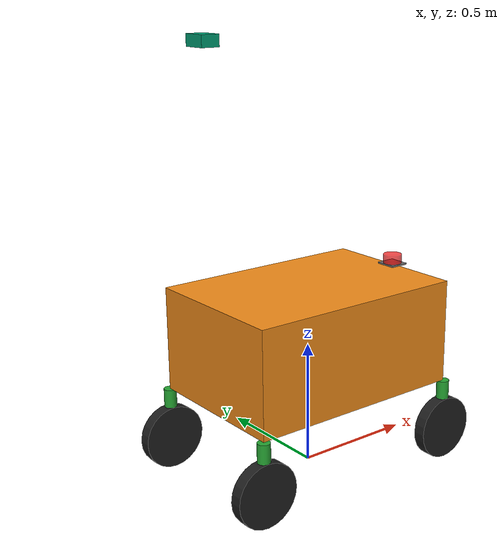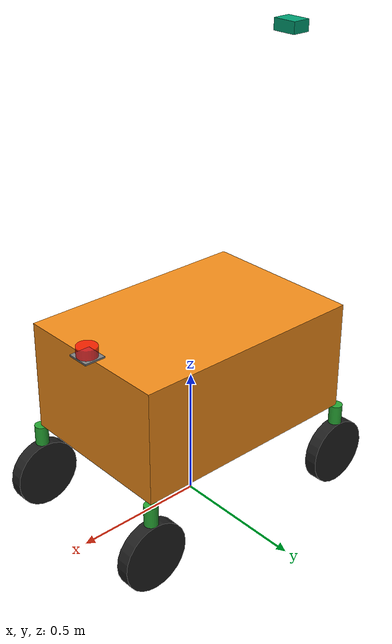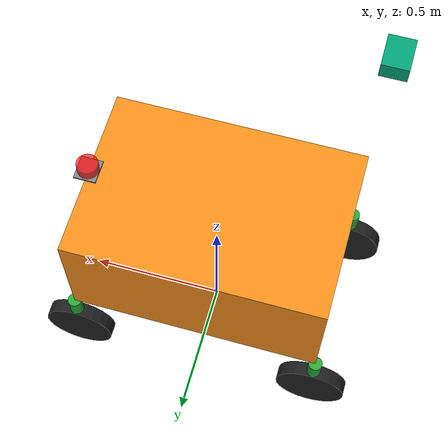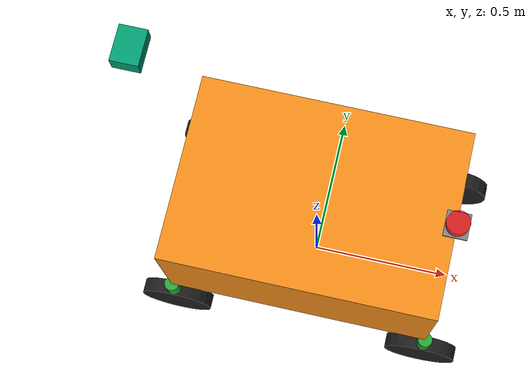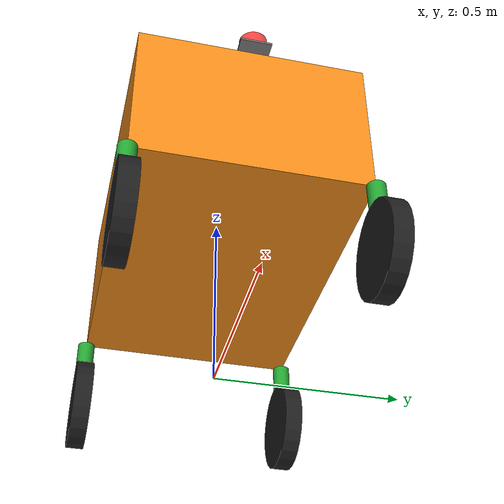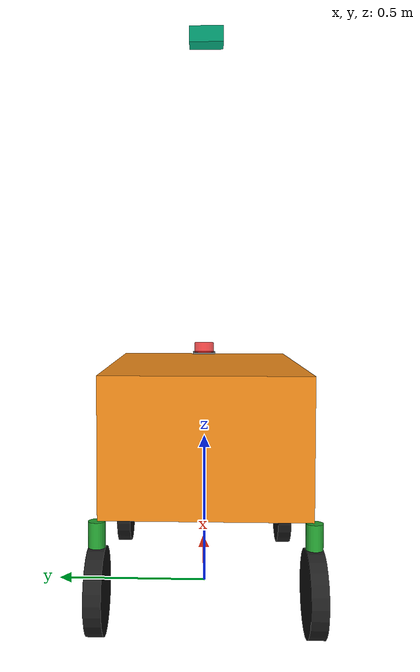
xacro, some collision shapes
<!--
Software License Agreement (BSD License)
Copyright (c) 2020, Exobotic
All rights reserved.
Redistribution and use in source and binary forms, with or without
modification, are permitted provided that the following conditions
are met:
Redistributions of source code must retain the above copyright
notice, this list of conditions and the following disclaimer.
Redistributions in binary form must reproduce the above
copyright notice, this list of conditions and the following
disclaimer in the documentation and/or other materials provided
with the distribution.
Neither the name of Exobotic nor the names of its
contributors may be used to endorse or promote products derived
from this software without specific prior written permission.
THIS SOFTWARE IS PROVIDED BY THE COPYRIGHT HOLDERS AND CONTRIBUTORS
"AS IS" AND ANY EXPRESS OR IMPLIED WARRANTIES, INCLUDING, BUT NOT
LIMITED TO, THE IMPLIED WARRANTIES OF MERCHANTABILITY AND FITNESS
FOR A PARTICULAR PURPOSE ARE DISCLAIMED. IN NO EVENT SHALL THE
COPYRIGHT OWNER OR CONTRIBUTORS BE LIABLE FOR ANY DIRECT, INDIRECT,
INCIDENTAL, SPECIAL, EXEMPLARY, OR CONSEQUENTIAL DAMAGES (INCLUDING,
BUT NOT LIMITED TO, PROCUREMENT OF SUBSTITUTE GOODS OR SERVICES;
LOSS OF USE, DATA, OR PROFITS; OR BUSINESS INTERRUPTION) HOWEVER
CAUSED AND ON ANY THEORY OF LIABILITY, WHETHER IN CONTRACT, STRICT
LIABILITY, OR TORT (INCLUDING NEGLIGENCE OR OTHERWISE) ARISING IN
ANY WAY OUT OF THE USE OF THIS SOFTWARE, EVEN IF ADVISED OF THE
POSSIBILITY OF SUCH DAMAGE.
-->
<?xml version="1.0"?>

<robot name="fieldbot" xmlns:xacro="http://www.ros.org/wiki/xacro">

	<!-- Constants for robot dimensions -->
	<xacro:property name="PI" value="3.1415926535897931"/>
	<xacro:property name="height" value="0.33" /> <!-- height of the body -->

	<xacro:property name="body_m" value="25.0" /> <!-- mass of the body structure -->
	<xacro:property name="body_l" value="0.904" /> <!-- length of the body structure -->
	<xacro:property name="body_w" value="0.622" /> <!-- width of the body structure -->
	<xacro:property name="body_h" value="0.4191" /> <!-- thickness of the body structure -->
	<xacro:property name="leg_m" value="1" /> <!-- mass of a thigh leg -->
	<xacro:property name="leg_r" value="0.025" /> <!-- radius of the leg cylinders -->
	<xacro:property name="wheel_m" value="5" /> <!-- mass of a single wheel -->
	<xacro:property name="wheel_r" value="0.127" /> <!-- radius of the wheels -->
	<xacro:property name="wheel_h" value="0.05" /> <!-- thickness of the wheels -->
	<xacro:property name="wheel_off" value="0.00" /> <!-- thickness of the wheels -->
	<xacro:property name="joint_damping" value="0.1" /> <!-- damping of all joints -->
	<xacro:property name="camera_mount_height" value="0.94" />
	<xacro:property name="camera_tilt_angle_deg" value="15" />
	<xacro:property name="lidar_mount_height" value="0.0" />

	<!-- Import all Gazebo-customization elements, including Gazebo colors -->
	<xacro:include filename="$(find bender_description)/urdf/bender.gazebo" />
	<!-- Import Rviz colors -->
	<xacro:include filename="$(find bender_description)/urdf/materials.xacro" />
	<!-- Import Sensors -->
	<xacro:include filename="$(find bender_description)/urdf/sensors/logitech_c910.xacro" />
	<xacro:include filename="$(find bender_description)/urdf/sensors/rplidar.xacro" />

	<!-- BODY link -->
	<link name="base_link">
		<collision>
			<origin xyz="0 0 0" rpy="0 0 0"/>
			<geometry>
				<box size="${body_l} ${body_w} ${body_h}"/>
			</geometry>
		</collision>
		<visual>
			<origin xyz="0 0 0" rpy="0 0 0"/>
			<geometry>
				<box size="${body_l} ${body_w} ${body_h}"/>
			</geometry>
			<material name="orange"/>
		</visual>
		<inertial>
			<origin xyz="0 0 0" rpy="0 0 0"/>
			<mass value="${body_m}"/>
			<inertia ixx="${body_m / 12.0 * (body_w*body_w + body_h*body_h)}" ixy="0.0" ixz="0.0"
					 iyy="${body_m / 12.0 * (body_l*body_l + body_h*body_h)}" iyz="0.0"
					 izz="${body_m / 12.0 * (body_w*body_w + body_l*body_l)}"/>
		</inertial>
	</link>
	<link name="base_footprint"/>
	<joint name="base_footprint_joint" type="fixed">
		<parent link="base_footprint"/>
		<child link="base_link"/>
		<origin xyz="0 0 ${height + body_h/2}" rpy="0 0 0"/>
	</joint>

	<!-- LEG joints -->
	<joint name="leg_lf_joint" type="continuous">
		<origin xyz="${body_l / 2} ${body_w / 2} ${-body_h/2 - (height - 2*wheel_r - wheel_off)/2}" rpy="0 0 0"/>
		<parent link="base_link" />
		<child link="leg_lf" />
		<dynamics damping="${joint_damping}"/>
		<axis xyz="0 0 1" />
	</joint>
	<joint name="leg_rf_joint" type="continuous">
		<origin xyz="${body_l / 2} ${-body_w / 2} ${-body_h/2 - (height - 2*wheel_r - wheel_off)/2}" rpy="0 0 0"/>
		<parent link="base_link" />
		<child link="leg_rf" />
		<dynamics damping="${joint_damping}"/>
		<axis xyz="0 0 1" />
	</joint>
	<joint name="leg_lh_joint" type="continuous">
		<origin xyz="${-body_l / 2} ${body_w / 2} ${-body_h/2 - (height - 2*wheel_r - wheel_off)/2}" rpy="0 0 0"/>
		<parent link="base_link" />
		<child link="leg_lh" />
		<dynamics damping="${joint_damping}"/>
		<axis xyz="0 0 1" />
	</joint>
	<joint name="leg_rh_joint" type="continuous">
		<origin xyz="${-body_l / 2} ${-body_w / 2} ${-body_h/2 - (height - 2*wheel_r - wheel_off)/2}" rpy="0 0 0"/>
		<parent link="base_link" />
		<child link="leg_rh" />
		<dynamics damping="${joint_damping}"/>
		<axis xyz="0 0 1" />
	</joint>

	<!-- LEG links -->
	<link name="leg_lf">
		<collision>
			<origin xyz="0 0 0" rpy="0 0 0"/>
			<geometry>
				<cylinder radius="${leg_r}" length="${height - 2*wheel_r - wheel_off}"/>
			</geometry>
		</collision>
		<visual>
			<origin xyz="0 0 0" rpy="0 0 0"/>
			<geometry>
				<cylinder radius="${leg_r}" length="${height - 2*wheel_r - wheel_off}"/>
			</geometry>
			<material name="green"/>
		</visual>
		<inertial>
			<origin xyz="0 0 0" rpy="0 0 0"/>
			<mass value="${leg_m}"/>
			<inertia ixx="${leg_m / 12.0 * (3*leg_r*leg_r + (height - 2*wheel_r - wheel_off)*(height - 2*wheel_r - wheel_off))}" ixy="0.0" ixz="0.0"
					 iyy="${leg_m / 12.0 * (3*leg_r*leg_r + (height - 2*wheel_r - wheel_off)*(height - 2*wheel_r - wheel_off))}" iyz="0.0"
					 izz="${leg_m / 2.0 * leg_r * leg_r}"/>
		</inertial>
	</link>
	<link name="leg_rf">
		<collision>
			<origin xyz="0 0 0" rpy="0 0 0"/>
			<geometry>
				<cylinder radius="${leg_r}" length="${height - 2*wheel_r - wheel_off}"/>
			</geometry>
		</collision>
		<visual>
			<origin xyz="0 0 0" rpy="0 0 0"/>
			<geometry>
				<cylinder radius="${leg_r}" length="${height - 2*wheel_r - wheel_off}"/>
			</geometry>
			<material name="green"/>
		</visual>
		<inertial>
			<origin xyz="0 0 0" rpy="0 0 0"/>
			<mass value="${leg_m}"/>
			<inertia ixx="${leg_m / 12.0 * (3*leg_r*leg_r + (height - 2*wheel_r - wheel_off)*(height - 2*wheel_r - wheel_off))}" ixy="0.0" ixz="0.0"
					 iyy="${leg_m / 12.0 * (3*leg_r*leg_r + (height - 2*wheel_r - wheel_off)*(height - 2*wheel_r - wheel_off))}" iyz="0.0"
					 izz="${leg_m / 2.0 * leg_r * leg_r}"/>
		</inertial>
	</link>
	<link name="leg_lh">
		<collision>
			<origin xyz="0 0 0" rpy="0 0 0"/>
			<geometry>
				<cylinder radius="${leg_r}" length="${height - 2*wheel_r - wheel_off}"/>
			</geometry>
		</collision>
		<visual>
			<origin xyz="0 0 0" rpy="0 0 0"/>
			<geometry>
				<cylinder radius="${leg_r}" length="${height - 2*wheel_r - wheel_off}"/>
			</geometry>
			<material name="green"/>
		</visual>
		<inertial>
			<origin xyz="0 0 0" rpy="0 0 0"/>
			<mass value="${leg_m}"/>
			<inertia ixx="${leg_m / 12.0 * (3*leg_r*leg_r + (height - 2*wheel_r - wheel_off)*(height - 2*wheel_r - wheel_off))}" ixy="0.0" ixz="0.0"
					 iyy="${leg_m / 12.0 * (3*leg_r*leg_r + (height - 2*wheel_r - wheel_off)*(height - 2*wheel_r - wheel_off))}" iyz="0.0"
					 izz="${leg_m / 2.0 * leg_r * leg_r}"/>
		</inertial>
	</link>
	<link name="leg_rh">
		<collision>
			<origin xyz="0 0 0" rpy="0 0 0"/>
			<geometry>
				<cylinder radius="${leg_r}" length="${height - 2*wheel_r - wheel_off}"/>
			</geometry>
		</collision>
		<visual>
			<origin xyz="0 0 0" rpy="0 0 0"/>
			<geometry>
				<cylinder radius="${leg_r}" length="${height - 2*wheel_r - wheel_off}"/>
			</geometry>
			<material name="green"/>
		</visual>
		<inertial>
			<origin xyz="0 0 0" rpy="0 0 0"/>
			<mass value="${leg_m}"/>
			<inertia ixx="${leg_m / 12.0 * (3*leg_r*leg_r + (height - 2*wheel_r - wheel_off)*(height - 2*wheel_r - wheel_off))}" ixy="0.0" ixz="0.0"
					 iyy="${leg_m / 12.0 * (3*leg_r*leg_r + (height - 2*wheel_r - wheel_off)*(height - 2*wheel_r - wheel_off))}" iyz="0.0"
					 izz="${leg_m / 2.0 * leg_r * leg_r}"/>
		</inertial>
	</link>

	<!-- WHEEL joints -->
	<joint name="wheel_lf_joint" type="continuous">
		<parent link="leg_lf"/>
		<child link="wheel_lf"/>
		<origin xyz="0 0 ${-(height + wheel_off) / 2}" rpy="0 0 ${PI}"/>
		<dynamics damping="${joint_damping}"/>
		<axis xyz="0 1 0"/>
	</joint>
	<joint name="wheel_rf_joint" type="continuous">
		<parent link="leg_rf"/>
		<child link="wheel_rf"/>
		<origin xyz="0 0 ${-(height + wheel_off) / 2}" rpy="0 0 0"/>
		<dynamics damping="${joint_damping}"/>
		<axis xyz="0 1 0"/>
	</joint>
	<joint name="wheel_lh_joint" type="continuous">
		<parent link="leg_lh"/>
		<child link="wheel_lh"/>
		<origin xyz="0 0 ${-(height + wheel_off) / 2}" rpy="0 0 ${PI}"/>
		<dynamics damping="${joint_damping}"/>
		<axis xyz="0 1 0"/>
	</joint>
	<joint name="wheel_rh_joint" type="continuous">
		<parent link="leg_rh"/>
		<child link="wheel_rh"/>
		<origin xyz="0 0 ${-(height + wheel_off) / 2}" rpy="0 0 0"/>
		<dynamics damping="${joint_damping}"/>
		<axis xyz="0 1 0"/>
	</joint>

	<!-- WHEEL links -->
	<link name="wheel_lf">
		<collision>
			<origin xyz="0 0 0" rpy="0 ${PI/2} ${PI/2}"/>
			<geometry>
				<cylinder radius="${wheel_r}" length="${wheel_h}"/>
			</geometry>
		</collision>
		<visual>
  			<origin xyz="0 0 0" rpy="0 ${PI/2} ${PI/2}"/>
			<geometry>
				<cylinder radius="${wheel_r}" length="${wheel_h}"/>
			</geometry>
			<material name="black"/>
		</visual>
		<inertial>
  			<origin xyz="0 0 0" rpy="0 ${PI/2} ${PI/2}"/>
			<mass value="${wheel_m}"/>
			<inertia ixx="${wheel_m / 12.0 * (3*wheel_r*wheel_r + wheel_h*wheel_h)}" ixy="0.0" ixz="0.0"
					 iyy="${wheel_m / 12.0 * (3*wheel_r*wheel_r + wheel_h*wheel_h)}" iyz="0.0"
					 izz="${wheel_m / 2.0 * wheel_r * wheel_r}"/>
		</inertial>
	</link>
	<link name="wheel_rf">
		<collision>
			<origin xyz="0 0 0" rpy="0 ${PI/2} ${PI/2}"/>
			<geometry>
				<cylinder radius="${wheel_r}" length="${wheel_h}"/>
			</geometry>
		</collision>
		<visual>
  			<origin xyz="0 0 0" rpy="0 ${PI/2} ${PI/2}"/>
			<geometry>
				<cylinder radius="${wheel_r}" length="${wheel_h}"/>
			</geometry>
			<material name="black"/>
		</visual>
		<inertial>
  			<origin xyz="0 0 0" rpy="0 ${PI/2} ${PI/2}"/>
			<mass value="${wheel_m}"/>
			<inertia ixx="${wheel_m / 12.0 * (3*wheel_r*wheel_r + wheel_h*wheel_h)}" ixy="0.0" ixz="0.0"
					 iyy="${wheel_m / 12.0 * (3*wheel_r*wheel_r + wheel_h*wheel_h)}" iyz="0.0"
					 izz="${wheel_m / 2.0 * wheel_r * wheel_r}"/>
		</inertial>
	</link>
	<link name="wheel_lh">
		<collision>
			<origin xyz="0 0 0" rpy="0 ${PI/2} ${PI/2}"/>
			<geometry>
				<cylinder radius="${wheel_r}" length="${wheel_h}"/>
			</geometry>
		</collision>
		<visual>
  			<origin xyz="0 0 0" rpy="0 ${PI/2} ${PI/2}"/>
			<geometry>
				<cylinder radius="${wheel_r}" length="${wheel_h}"/>
			</geometry>
			<material name="black"/>
		</visual>
		<inertial>
  			<origin xyz="0 0 0" rpy="0 ${PI/2} ${PI/2}"/>
			<mass value="${wheel_m}"/>
			<inertia ixx="${wheel_m / 12.0 * (3*wheel_r*wheel_r + wheel_h*wheel_h)}" ixy="0.0" ixz="0.0"
					 iyy="${wheel_m / 12.0 * (3*wheel_r*wheel_r + wheel_h*wheel_h)}" iyz="0.0"
					 izz="${wheel_m / 2.0 * wheel_r * wheel_r}"/>
		</inertial>
	</link>
	<link name="wheel_rh">
		<collision>
			<origin xyz="0 0 0" rpy="0 ${PI/2} ${PI/2}"/>
			<geometry>
				<cylinder radius="${wheel_r}" length="${wheel_h}"/>
			</geometry>
		</collision>
		<visual>
  			<origin xyz="0 0 0" rpy="0 ${PI/2} ${PI/2}"/>
			<geometry>
				<cylinder radius="${wheel_r}" length="${wheel_h}"/>
			</geometry>
			<material name="black"/>
		</visual>
		<inertial>
  			<origin xyz="0 0 0" rpy="0 ${PI/2} ${PI/2}"/>
			<mass value="${wheel_m}"/>
			<inertia ixx="${wheel_m / 12.0 * (3*wheel_r*wheel_r + wheel_h*wheel_h)}" ixy="0.0" ixz="0.0"
					 iyy="${wheel_m / 12.0 * (3*wheel_r*wheel_r + wheel_h*wheel_h)}" iyz="0.0"
					 izz="${wheel_m / 2.0 * wheel_r * wheel_r}"/>
		</inertial>
	</link>

	<!-- SENSORS: -->
	<xacro:logitech_c910 name="bender_camera" connected_to="base_link" tilt_degrees="${camera_tilt_angle_deg}">
		<origin xyz="${-body_l/2} 0 ${body_h/2 + camera_mount_height}"
			    rpy="0 0 0" />
    </xacro:logitech_c910>
	<xacro:rplidar name="rplidar" connected_to="base_link">
		<origin xyz="${body_l/2} 0 ${body_h/2 + lidar_mount_height}"
			    rpy="0 0 ${PI}" />
    </xacro:rplidar>

	<!-- ACTUATORS -->
	<transmission name="leg_lf_trans">
		<type>transmission_interface/SimpleTransmission</type>
		<joint name="leg_lf_joint">
			<hardwareInterface>hardware_interface/PositionJointInterface</hardwareInterface>
		</joint>
		<actuator name="leg_lf_mot">
			<mechanicalReduction>1</mechanicalReduction>
		</actuator>
	</transmission>
	<transmission name="leg_rf_trans">
		<type>transmission_interface/SimpleTransmission</type>
		<joint name="leg_rf_joint">
			<hardwareInterface>hardware_interface/PositionJointInterface</hardwareInterface>
		</joint>
		<actuator name="leg_rf_mot">
			<mechanicalReduction>1</mechanicalReduction>
		</actuator>
	</transmission>
	<transmission name="leg_lh_trans">
		<type>transmission_interface/SimpleTransmission</type>
		<joint name="leg_lh_joint">
			<hardwareInterface>hardware_interface/PositionJointInterface</hardwareInterface>
		</joint>
		<actuator name="leg_lh_mot">
			<mechanicalReduction>1</mechanicalReduction>
		</actuator>
	</transmission>
	<transmission name="leg_rh_trans">
		<type>transmission_interface/SimpleTransmission</type>
		<joint name="leg_rh_joint">
			<hardwareInterface>hardware_interface/PositionJointInterface</hardwareInterface>
		</joint>
		<actuator name="leg_rh_mot">
			<mechanicalReduction>1</mechanicalReduction>
		</actuator>
	</transmission>

	<transmission name="wheel_lf_trans">
		<type>transmission_interface/SimpleTransmission</type>
		<joint name="wheel_lf_joint">
			<hardwareInterface>hardware_interface/VelocityJointInterface</hardwareInterface>
		</joint>
		<actuator name="wheel_lf_mot">
			<mechanicalReduction>1</mechanicalReduction>
		</actuator>
	</transmission>
	<transmission name="wheel_rf_trans">
		<type>transmission_interface/SimpleTransmission</type>
		<joint name="wheel_rf_joint">
			<hardwareInterface>hardware_interface/VelocityJointInterface</hardwareInterface>
		</joint>
		<actuator name="wheel_rf_mot">
			<mechanicalReduction>1</mechanicalReduction>
		</actuator>
	</transmission>
	<transmission name="wheel_lh_trans">
		<type>transmission_interface/SimpleTransmission</type>
		<joint name="wheel_lh_joint">
			<hardwareInterface>hardware_interface/VelocityJointInterface</hardwareInterface>
		</joint>
		<actuator name="wheel_lh_mot">
			<mechanicalReduction>1</mechanicalReduction>
		</actuator>
	</transmission>
	<transmission name="wheel_rh_trans">
		<type>transmission_interface/SimpleTransmission</type>
		<joint name="wheel_rh_joint">
			<hardwareInterface>hardware_interface/VelocityJointInterface</hardwareInterface>
		</joint>
		<actuator name="wheel_rh_mot">
			<mechanicalReduction>1</mechanicalReduction>
		</actuator>
	</transmission>

</robot>

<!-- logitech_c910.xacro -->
<robot xmlns:xacro="http://wiki.ros.org/xacro">

  <xacro:macro name="logitech_c910" params="name:='' connected_to:='' tilt_degrees:='0' *origin">
  <xacro:property name="DEG2RAD" value="0.017453292519943295"/>

    <xacro:unless value="${connected_to == ''}">
      <joint name="${name}_joint" type="fixed">
        <parent link="${connected_to}"/>
        <child link="${name}"/>
        <xacro:insert_block name="origin"/>
      </joint>
    </xacro:unless>

    <link name="${name}">
      <visual>
        <origin xyz="0 0 0" rpy="0 0 0" />
        <geometry>
          <mesh filename="file://$(find bender_description)/meshes/sensors/logitech_c910.dae" />
        </geometry>
      </visual>
      <collision>
        <origin xyz="0 0 0" rpy="0 0 0" />
        <geometry>
          <box size="0.071 0.094 0.043"/>
        </geometry>
      </collision>
    </link>

    <!-- Additional link for camera sensor to orient camera direction -->
    <link name="${name}_sensor"/>
    <joint name="${name}_sensor_joint" type="fixed">
      <parent link="${name}"/>
      <child link="${name}_sensor"/>
      <origin xyz="0.005 0 0" rpy="0 ${tilt_degrees*DEG2RAD} 0" />
    </joint>

    <!-- Gazebo sensor plugin -->
    <gazebo reference="${name}_sensor">
      <sensor type="camera" name="camera1">
        <visualize>false</visualize>
        <update_rate>30.0</update_rate>
        <camera name="${name}">
          <horizontal_fov>1.257</horizontal_fov>
          <image>
            <width>640</width>
            <height>480</height>
            <format>R8G8B8</format>
          </image>
          <clip>
            <near>0.03</near>
            <far>300</far>
          </clip>
        </camera>
        <!-- Gazebo-ROS interface plugin -->
        <plugin name="camera_controller" filename="libgazebo_ros_camera.so">
          <alwaysOn>true</alwaysOn>
          <updateRate>10.0</updateRate>
          <cameraName>${name}</cameraName>
          <imageTopicName>image_rect_color</imageTopicName>
          <cameraInfoTopicName>camera_info</cameraInfoTopicName>
          <frameName>${name}</frameName>
          <hackBaseline>0.07</hackBaseline>
          <distortionK1>0.0</distortionK1>
          <distortionK2>0.0</distortionK2>
          <distortionK3>0.0</distortionK3>
          <distortionT1>0.0</distortionT1>
          <distortionT2>0.0</distortionT2>
        </plugin>
      </sensor>
    </gazebo>

  </xacro:macro>

</robot>

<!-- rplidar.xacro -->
<robot xmlns:xacro="http://wiki.ros.org/xacro">

    <xacro:property name="PI" value="3.1415926535897931"/>
    <xacro:macro name="rplidar" params="name:='' connected_to:='' *origin">

        <xacro:unless value="${connected_to == ''}">
        <joint name="${name}_joint" type="fixed">
            <parent link="${connected_to}"/>
            <child link="${name}"/>
            <xacro:insert_block name="origin"/>
        </joint>
        </xacro:unless>

        <link name="${name}">
            <visual>
            <origin xyz="0 0 0.003"/>
            <geometry>
                <box size="0.079 0.086 0.006"/>
            </geometry>
            <material name="support">
                <color rgba="0.5 0.5 0.5 1.0"/>
            </material>
            </visual>
            <visual>
            <origin xyz="0 0 0.023"/>
            <geometry>
                <cylinder radius="0.038" length="0.04"/>
            </geometry>
            <material name="lidar">
                <color rgba="1.0 0.0 0.0 0.7"/>
            </material>
            </visual>
            <collision>
            <origin xyz="0 0 0.003"/>
            <geometry>
                <box size="0.079 0.086 0.006"/>
            </geometry>
            </collision>
            <collision>
            <origin xyz="0 0 0.023"/>
            <geometry>
                <cylinder radius="0.038" length="0.04"/>
            </geometry>
            </collision>
        </link>

        <link name="${name}_sensor"/>
        <joint name="${name}_sensor_joint" type="fixed">
            <origin xyz="0 0 0.0368" rpy="0 0 0"/>
            <parent link="${name}"/>
            <child link="${name}_sensor"/>
        </joint>

        <gazebo reference="${name}_sensor">
			<sensor type="ray" name="rplidar_sensor">
				<pose>0 0 0 0 0 0</pose>
				<visualize>false</visualize>
				<update_rate>10</update_rate>
				<ray>
					<scan>
						<horizontal>
							<samples>360</samples>
							<resolution>1</resolution>
							<min_angle>${-3*PI/4}</min_angle>
							<max_angle>${3*PI/4}</max_angle>
						</horizontal>
					</scan>
					<range>
						<min>0.15</min>
						<max>6.0</max>
						<resolution>0.06</resolution>
					</range>
					<noise>
						<type>gaussian</type>
						<mean>0.0</mean>
						<stddev>0.01</stddev>
					</noise>
				</ray>
				<plugin name="rplidar_controller" filename="libgazebo_ros_laser.so">
					<topicName>/bender_sensors/lidar/scan</topicName>
					<frameName>${name}</frameName>
				</plugin>
			</sensor>
		</gazebo>
    </xacro:macro>

</robot>
